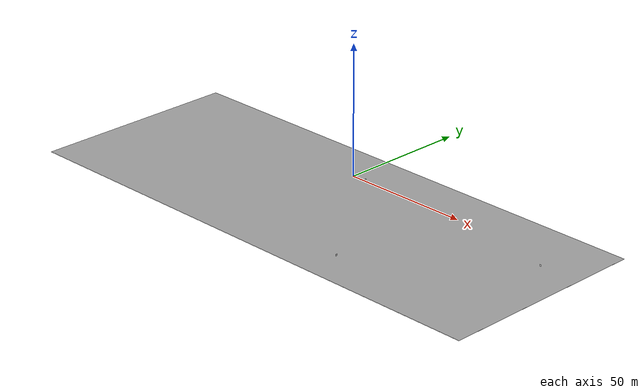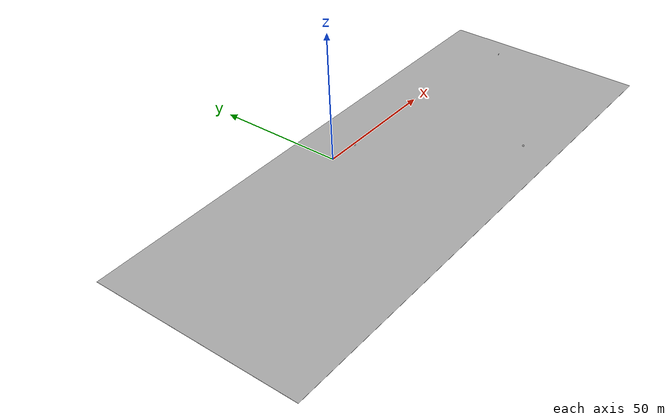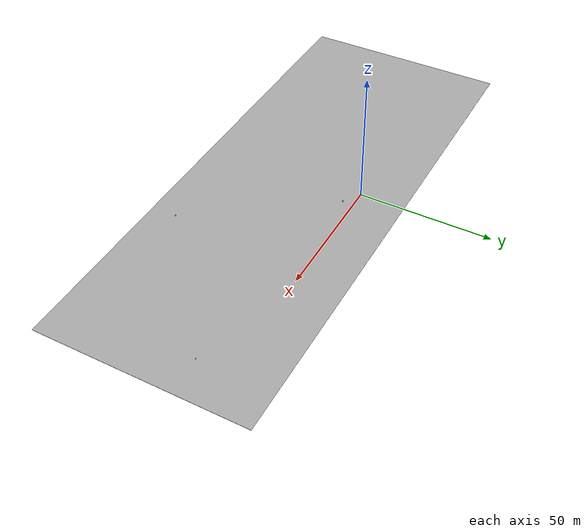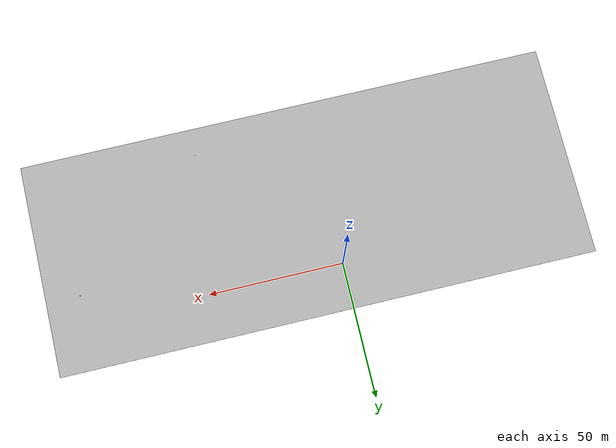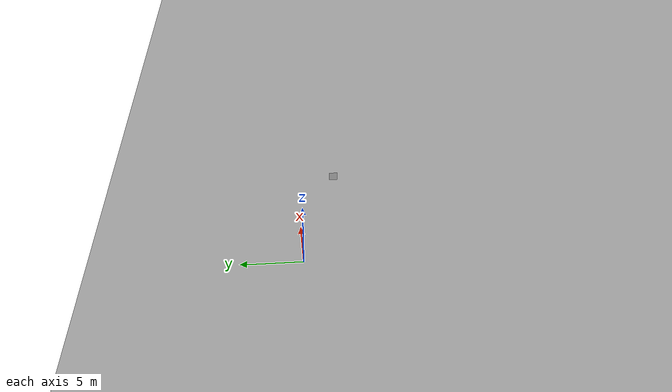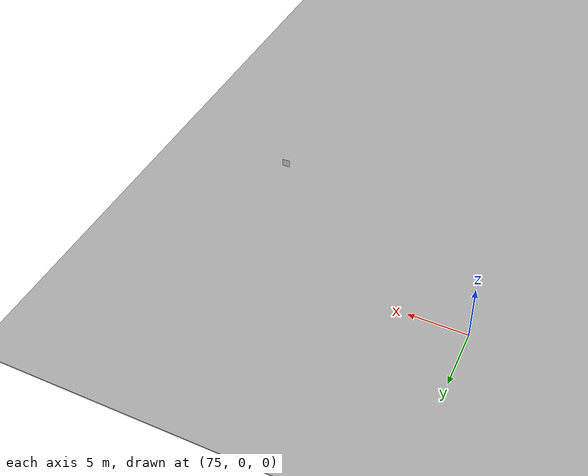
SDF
<sdf version="1.7">
 <world name="default">
  <light name="sun" type="directional">
   <pose>0 0 10 0 -0 0</pose>
   <diffuse>0.8 0.8 0.8 1</diffuse>
   <specular>0.1 0.1 0.1 1</specular>
   <attenuation>
    <range>1000</range>
    <constant>0.9</constant>
    <linear>0.01</linear>
    <quadratic>0.001</quadratic>
   </attenuation>
   <direction>-0.5 0.5 -1</direction>
   <spot><inner_angle>0</inner_angle><outer_angle>0</outer_angle><falloff>0</falloff></spot>
  </light>
  <scene>
   <grid>0</grid>
   <origin_visual>0</origin_visual>
   <ambient>0.592 0.624 0.635 1</ambient>
   <sky><clouds><speed>12</speed></clouds></sky>
   <background>0.35 0.35 0.35 1</background>
   <shadows>1</shadows>
  </scene>
  <model name="ground">
   <pose>8.5 -23 0 0 -0 0</pose>
   <static>1</static>
   <link name="ground">
    <collision name="collision"><geometry><box><size>200 80 0.1</size></box></geometry></collision>
    <visual name="visual">
     <geometry><box><size>200 80 0.1</size></box></geometry>
     <material>
      <script><uri>file://media/materials/scripts/map.material</uri><name>map/material</name></script>
     </material>
    </visual>
   </link>
  </model>
  <gravity>0 0 -9.8</gravity>
  <magnetic_field>6e-06 2.3e-05 -4.2e-05</magnetic_field>
  <atmosphere type="adiabatic"/>
  <physics name="default_physics" default="0" type="ode">
   <max_step_size>0.001</max_step_size>
   <real_time_factor>1</real_time_factor>
   <real_time_update_rate>1000</real_time_update_rate>
  </physics>
  <scene><ambient>0.4 0.4 0.4 1</ambient><background>0.7 0.7 0.7 1</background><shadows>1</shadows></scene>
  <spherical_coordinates>
   <surface_model>EARTH_WGS84</surface_model>
   <latitude_deg>0</latitude_deg>
   <longitude_deg>0</longitude_deg>
   <elevation>0</elevation>
   <heading_deg>0</heading_deg>
  </spherical_coordinates>
  <model name="sign_0">
   <link name="link_3">
    <pose>0.098226 0 2.73172 3.14159 -1.55706 3.14159</pose>
    <inertial>
     <inertia><ixx>0</ixx><ixy>0</ixy><ixz>0</ixz><iyy>0</iyy><iyz>0</iyz><izz>0</izz></inertia>
     <mass>0</mass>
    </inertial>
    <visual name="visual">
     <pose>0.01 0 0.5 0 1.57 0</pose>
     <geometry><box><size>0.001 0.690163 0.682299</size></box></geometry>
     <material>
      <script><uri>file://media/materials/scripts/turn_right.material</uri><name>turn_right/material</name></script>
      <shader type="pixel"/>
     </material>
    </visual>
    <collision name="collision">
     <geometry><box><size>0.001 0.690163 0.682299</size></box></geometry>
     <surface>
      <friction>
       <ode><mu>1</mu><mu2>1</mu2><fdir1>0 0 0</fdir1><slip1>0</slip1><slip2>0</slip2></ode>
       <torsional>
        <coefficient>1</coefficient>
        <patch_radius>0</patch_radius>
        <surface_radius>0</surface_radius>
        <use_patch_radius>1</use_patch_radius>
        <ode><slip>0</slip></ode>
       </torsional>
      </friction>
      <bounce><restitution_coefficient>0</restitution_coefficient><threshold>1e+06</threshold></bounce>
      <contact>
       <collide_without_contact>0</collide_without_contact>
       <collide_without_contact_bitmask>1</collide_without_contact_bitmask>
       <collide_bitmask>1</collide_bitmask>
       <ode>
        <soft_cfm>0</soft_cfm>
        <soft_erp>0.2</soft_erp>
        <kp>1e+13</kp>
        <kd>1</kd>
        <max_vel>0.01</max_vel>
        <min_depth>0</min_depth>
       </ode>
       <bullet>
        <split_impulse>1</split_impulse>
        <split_impulse_penetration_threshold>-0.01</split_impulse_penetration_threshold>
        <soft_cfm>0</soft_cfm>
        <soft_erp>0.2</soft_erp>
        <kp>1e+13</kp>
        <kd>1</kd>
       </bullet>
      </contact>
     </surface>
    </collision>
   </link>
   <static>1</static>
   <pose>9.37 -3 -0.2 0 -0 0</pose>
  </model>
  <model name="sign_0_clone">
   <link name="link_3">
    <pose>0.098226 0 2.73172 3.14159 -1.55706 3.14159</pose>
    <inertial>
     <inertia><ixx>0</ixx><ixy>0</ixy><ixz>0</ixz><iyy>0</iyy><iyz>0</iyz><izz>0</izz></inertia>
     <mass>0</mass>
    </inertial>
    <visual name="visual">
     <pose>0.01 0 0.5 0 1.57 0</pose>
     <geometry><box><size>0.001 0.690163 0.682299</size></box></geometry>
     <material>
      <script>
       <uri>file://media/materials/scripts/go_straight.material</uri>
       <name>go_straight/material</name>
      </script>
      <shader type="pixel"/>
     </material>
    </visual>
    <collision name="collision">
     <geometry><box><size>0.001 0.690163 0.682299</size></box></geometry>
     <surface>
      <friction>
       <ode><mu>1</mu><mu2>1</mu2><fdir1>0 0 0</fdir1><slip1>0</slip1><slip2>0</slip2></ode>
       <torsional>
        <coefficient>1</coefficient>
        <patch_radius>0</patch_radius>
        <surface_radius>0</surface_radius>
        <use_patch_radius>1</use_patch_radius>
        <ode><slip>0</slip></ode>
       </torsional>
      </friction>
      <bounce><restitution_coefficient>0</restitution_coefficient><threshold>1e+06</threshold></bounce>
      <contact>
       <collide_without_contact>0</collide_without_contact>
       <collide_without_contact_bitmask>1</collide_without_contact_bitmask>
       <collide_bitmask>1</collide_bitmask>
       <ode>
        <soft_cfm>0</soft_cfm>
        <soft_erp>0.2</soft_erp>
        <kp>1e+13</kp>
        <kd>1</kd>
        <max_vel>0.01</max_vel>
        <min_depth>0</min_depth>
       </ode>
       <bullet>
        <split_impulse>1</split_impulse>
        <split_impulse_penetration_threshold>-0.01</split_impulse_penetration_threshold>
        <soft_cfm>0</soft_cfm>
        <soft_erp>0.2</soft_erp>
        <kp>1e+13</kp>
        <kd>1</kd>
       </bullet>
      </contact>
     </surface>
    </collision>
   </link>
   <static>1</static>
   <pose>43.55 -51.8 -0.2 0 -0 3.1415</pose>
  </model>
  <model name="sign_0_clone_clone">
   <link name="link_3">
    <pose>0.098226 0 2.73172 3.14159 -1.55706 3.14159</pose>
    <inertial>
     <inertia><ixx>0</ixx><ixy>0</ixy><ixz>0</ixz><iyy>0</iyy><iyz>0</iyz><izz>0</izz></inertia>
     <mass>0</mass>
    </inertial>
    <visual name="visual">
     <pose>0.01 0 0.5 0 1.57 0</pose>
     <geometry><box><size>0.001 0.690163 0.682299</size></box></geometry>
     <material>
      <script><uri>file://media/materials/scripts/stop.material</uri><name>stop/material</name></script>
      <shader type="pixel"/>
     </material>
    </visual>
    <collision name="collision">
     <geometry><box><size>0.001 0.690163 0.682299</size></box></geometry>
     <surface>
      <friction>
       <ode><mu>1</mu><mu2>1</mu2><fdir1>0 0 0</fdir1><slip1>0</slip1><slip2>0</slip2></ode>
       <torsional>
        <coefficient>1</coefficient>
        <patch_radius>0</patch_radius>
        <surface_radius>0</surface_radius>
        <use_patch_radius>1</use_patch_radius>
        <ode><slip>0</slip></ode>
       </torsional>
      </friction>
      <bounce><restitution_coefficient>0</restitution_coefficient><threshold>1e+06</threshold></bounce>
      <contact>
       <collide_without_contact>0</collide_without_contact>
       <collide_without_contact_bitmask>1</collide_without_contact_bitmask>
       <collide_bitmask>1</collide_bitmask>
       <ode>
        <soft_cfm>0</soft_cfm>
        <soft_erp>0.2</soft_erp>
        <kp>1e+13</kp>
        <kd>1</kd>
        <max_vel>0.01</max_vel>
        <min_depth>0</min_depth>
       </ode>
       <bullet>
        <split_impulse>1</split_impulse>
        <split_impulse_penetration_threshold>-0.01</split_impulse_penetration_threshold>
        <soft_cfm>0</soft_cfm>
        <soft_erp>0.2</soft_erp>
        <kp>1e+13</kp>
        <kd>1</kd>
       </bullet>
      </contact>
     </surface>
    </collision>
   </link>
   <static>1</static>
   <pose>95.5 -9.62 -0.2 0 -0 1.5707</pose>
  </model>
 </world>
</sdf>
